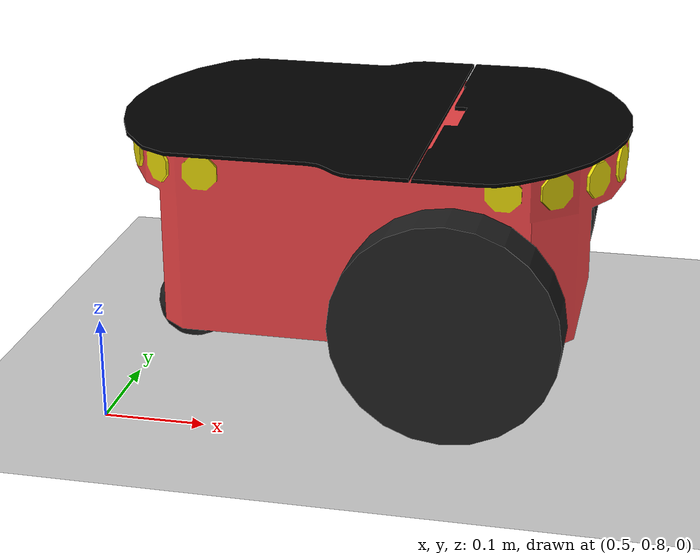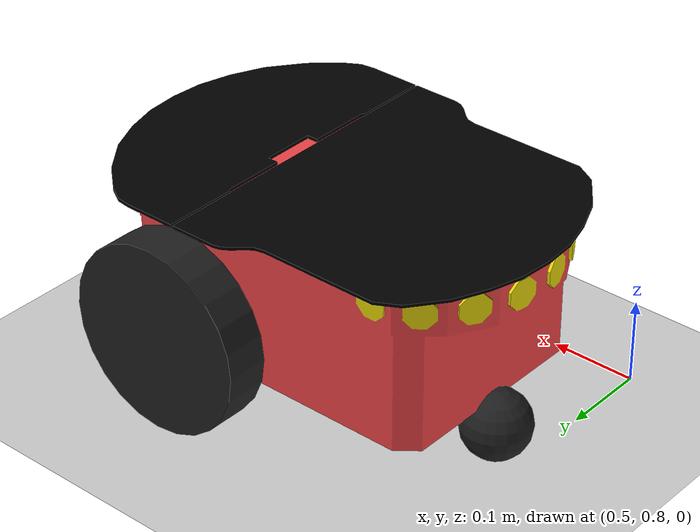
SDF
<sdf version="1.6">
 <world name="default">
  <light name="sun" type="directional">
   <pose>0 0 10 0 -0 0</pose>
   <diffuse>0.8 0.8 0.8 1</diffuse>
   <specular>0.1 0.1 0.1 1</specular>
   <attenuation>
    <range>1000</range>
    <constant>0.9</constant>
    <linear>0.01</linear>
    <quadratic>0.001</quadratic>
   </attenuation>
   <direction>-0.5 0.5 -1</direction>
  </light>
  <gravity>0 0 -9.8</gravity>
  <magnetic_field>6e-06 2.3e-05 -4.2e-05</magnetic_field>
  <atmosphere type="adiabatic"/>
  <physics name="default_physics" default="0" type="ode">
   <max_step_size>0.001</max_step_size>
   <real_time_factor>1</real_time_factor>
   <real_time_update_rate>1000</real_time_update_rate>
  </physics>
  <scene><ambient>0.4 0.4 0.4 1</ambient><background>0.7 0.7 0.7 1</background><shadows>1</shadows></scene>
  <spherical_coordinates>
   <surface_model>EARTH_WGS84</surface_model>
   <latitude_deg>0</latitude_deg>
   <longitude_deg>0</longitude_deg>
   <elevation>0</elevation>
   <heading_deg>0</heading_deg>
  </spherical_coordinates>
  <model name="ground_plane">
   <static>1</static>
   <link name="link">
    <collision name="collision">
     <geometry><plane><normal>0 0 1</normal><size>100 100</size></plane></geometry>
     <surface><friction><ode><mu>100</mu><mu2>50</mu2></ode></friction></surface>
    </collision>
    <visual name="visual">
     <cast_shadows>0</cast_shadows>
     <geometry><plane><normal>0 0 1</normal><size>110 110</size></plane></geometry>
     <material>
      <script><uri>file://media/materials/scripts/gazebo.material</uri><name>Gazebo/Grey</name></script>
     </material>
    </visual>
   </link>
  </model>
  <model name="robot">
   <pose>0.730029 1.00187 0 0 -0 0</pose>
   <link name="chassis">
    <pose>0 0 0.16 0 -0 0</pose>
    <inertial>
     <mass>5.67</mass>
     <inertia><ixx>0.07</ixx><iyy>0.08</iyy><izz>0.1</izz><ixy>0</ixy><ixz>0</ixz><iyz>0</iyz></inertia>
    </inertial>
    <collision name="collision"><geometry><box><size>0.445 0.277 0.17</size></box></geometry></collision>
    <collision name="castor_collision">
     <pose>-0.2 0 -0.12 0 -0 0</pose>
     <geometry><sphere><radius>0.04</radius></sphere></geometry>
     <surface><friction><ode><mu>0</mu><mu2>0</mu2><slip1>1</slip1><slip2>1</slip2></ode></friction></surface>
    </collision>
    <visual name="visual">
     <pose>0 0 0.04 0 -0 0</pose>
     <geometry><mesh><uri>model://pioneer2dx/meshes/chassis.dae</uri><scale>1 1 1</scale></mesh></geometry>
    </visual>
    <visual name="castor_visual">
     <pose>-0.2 0 -0.12 0 -0 0</pose>
     <geometry><sphere><radius>0.04</radius></sphere></geometry>
     <material>
      <script><uri>file://media/materials/scripts/gazebo.material</uri><name>Gazebo/FlatBlack</name></script>
     </material>
    </visual>
   </link>
   <link name="right_wheel">
    <pose>0.1 -0.17 0.11 -0 1.5707 1.5707</pose>
    <inertial>
     <mass>1.5</mass>
     <inertia><ixx>0.0051</ixx><iyy>0.0051</iyy><izz>0.009</izz><ixy>0</ixy><ixz>0</ixz><iyz>0</iyz></inertia>
    </inertial>
    <collision name="collision">
     <geometry><cylinder><radius>0.11</radius><length>0.05</length></cylinder></geometry>
     <surface>
      <friction><ode><mu>100000</mu><mu2>100000</mu2><slip1>0</slip1><slip2>0</slip2></ode></friction>
     </surface>
    </collision>
    <visual name="visual">
     <geometry><cylinder><radius>0.11</radius><length>0.05</length></cylinder></geometry>
     <material>
      <script><uri>file://media/materials/scripts/gazebo.material</uri><name>Gazebo/FlatBlack</name></script>
     </material>
    </visual>
   </link>
   <link name="left_wheel">
    <pose>0.1 0.17 0.11 -0 1.5707 1.5707</pose>
    <inertial>
     <mass>1.5</mass>
     <inertia><ixx>0.0051</ixx><iyy>0.0051</iyy><izz>0.009</izz><ixy>0</ixy><ixz>0</ixz><iyz>0</iyz></inertia>
    </inertial>
    <collision name="collision">
     <geometry><cylinder><radius>0.11</radius><length>0.05</length></cylinder></geometry>
     <surface>
      <friction><ode><mu>100000</mu><mu2>100000</mu2><slip1>0</slip1><slip2>0</slip2></ode></friction>
     </surface>
    </collision>
    <visual name="visual">
     <geometry><cylinder><radius>0.11</radius><length>0.05</length></cylinder></geometry>
     <material>
      <script><uri>file://media/materials/scripts/gazebo.material</uri><name>Gazebo/FlatBlack</name></script>
     </material>
    </visual>
   </link>
   <joint name="left_wheel_hinge" type="revolute">
    <pose>0 0 -0.03 0 -0 0</pose>
    <child>left_wheel</child>
    <parent>chassis</parent>
    <axis>
     <xyz>0 1 0</xyz>
     <use_parent_model_frame>1</use_parent_model_frame>
     <limit><lower>-1e+16</lower><upper>1e+16</upper></limit>
     <dynamics><spring_reference>0</spring_reference><spring_stiffness>0</spring_stiffness></dynamics>
    </axis>
   </joint>
   <joint name="right_wheel_hinge" type="revolute">
    <pose>0 0 0.03 0 -0 0</pose>
    <child>right_wheel</child>
    <parent>chassis</parent>
    <axis>
     <xyz>0 1 0</xyz>
     <use_parent_model_frame>1</use_parent_model_frame>
     <limit><lower>-1e+16</lower><upper>1e+16</upper></limit>
     <dynamics><spring_reference>0</spring_reference><spring_stiffness>0</spring_stiffness></dynamics>
    </axis>
   </joint>
   <plugin name="differential_drive_controller" filename="librobot_ros_diff_drive.so">
    <alwaysOn>true</alwaysOn>
    <legacyMode>true</legacyMode>
    <updateRate>100</updateRate>
    <leftJoint>left_wheel_hinge</leftJoint>
    <rightJoint>right_wheel_hinge</rightJoint>
    <wheelSeparation>0.66</wheelSeparation>
    <wheelDiameter>0.26</wheelDiameter>
    <torque>5</torque>
    <commandTopic>/robot/cmd_vel</commandTopic>
    <odometryTopic>/robot/odom</odometryTopic>
    <odometryFrame>chassis</odometryFrame>
    <robotBaseFrame>map</robotBaseFrame>
    <publishWheelTF>true</publishWheelTF>
    <publishWheelJointState>true</publishWheelJointState>
   </plugin>
  </model>
 </world>
</sdf>
